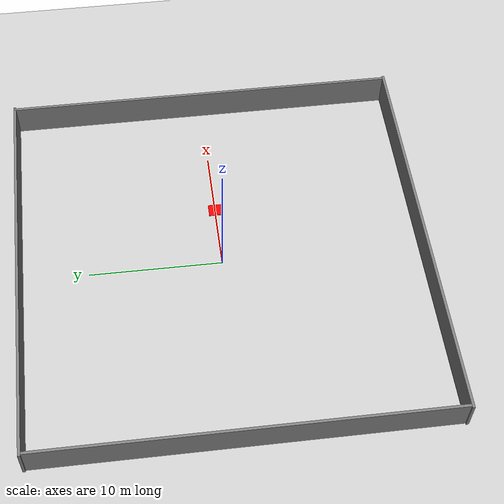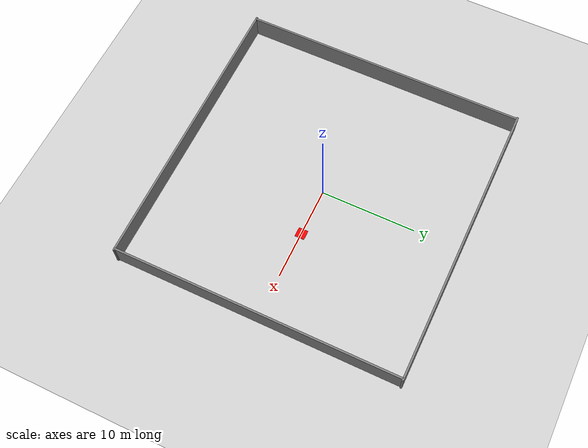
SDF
<sdf version="1.6">
 <world name="default">
  <physics default="1" name="default_physics" type="dart">
   <max_step_size>0.001</max_step_size>
   <real_time_update_rate>1000</real_time_update_rate>
  </physics>
  <scene><ambient>0.3 0.3 0.3 1</ambient><background>0.7 0.8 0.9 1</background><shadows>true</shadows></scene>
  <plugin filename="gz-sim-physics-system" name="gz::sim::systems::Physics"/>
  <plugin filename="gz-sim-user-commands-system" name="gz::sim::systems::UserCommands"/>
  <plugin filename="gz-sim-scene-broadcaster-system" name="gz::sim::systems::SceneBroadcaster"/>
  <plugin filename="gz-sim-sensors-system" name="gz::sim::systems::Sensors">
   <render_engine>ogre2</render_engine>
  </plugin>
  <plugin filename="gz-sim-imu-system" name="gz::sim::systems::Imu"/>
  <gravity>0 0 -9.8</gravity>
  <include><uri>https://fuel.gazebosim.org/1.0/OpenRobotics/models/Ground Plane</uri></include>
  <model name="north_wall">
   <static>true</static>
   <pose>0 15 1.25 0 0 0</pose>
   <link name="link">
    <collision name="collision"><geometry><box><size>30.4 0.2 2.5</size></box></geometry></collision>
    <visual name="visual">
     <geometry><box><size>30.4 0.2 2.5</size></box></geometry>
     <material><ambient>0.5 0.5 0.5 1</ambient><diffuse>0.5 0.5 0.5 1</diffuse></material>
    </visual>
   </link>
  </model>
  <model name="south_wall">
   <static>true</static>
   <pose>0 -15 1.25 0 0 0</pose>
   <link name="link">
    <collision name="collision"><geometry><box><size>30.4 0.2 2.5</size></box></geometry></collision>
    <visual name="visual">
     <geometry><box><size>30.4 0.2 2.5</size></box></geometry>
     <material><ambient>0.5 0.5 0.5 1</ambient><diffuse>0.5 0.5 0.5 1</diffuse></material>
    </visual>
   </link>
  </model>
  <model name="east_wall">
   <static>true</static>
   <pose>15 0 1.25 0 0 0</pose>
   <link name="link">
    <collision name="collision"><geometry><box><size>0.2 30 2.5</size></box></geometry></collision>
    <visual name="visual">
     <geometry><box><size>0.2 30 2.5</size></box></geometry>
     <material><ambient>0.5 0.5 0.5 1</ambient><diffuse>0.5 0.5 0.5 1</diffuse></material>
    </visual>
   </link>
  </model>
  <model name="west_wall">
   <static>true</static>
   <pose>-15 0 1.25 0 0 0</pose>
   <link name="link">
    <collision name="collision"><geometry><box><size>0.2 30 2.5</size></box></geometry></collision>
    <visual name="visual">
     <geometry><box><size>0.2 30 2.5</size></box></geometry>
     <material><ambient>0.5 0.5 0.5 1</ambient><diffuse>0.5 0.5 0.5 1</diffuse></material>
    </visual>
   </link>
  </model>
  <model name="goal_area">
   <static>true</static>
   <pose>5 0 -0.499 0 0 0</pose>
   <link name="link">
    <visual name="visual">
     <geometry><box><size>1 1 1</size></box></geometry>
     <material>
      <ambient>1 0 0 1</ambient>
      <diffuse>1 0 0 1</diffuse>
      <specular>0.1 0.1 0.1 1</specular>
      <emissive>0 0 0 1</emissive>
     </material>
    </visual>
   </link>
  </model>
  <light type="directional" name="sun">
   <pose>0 0 10 0 0 0</pose>
   <diffuse>0.8 0.8 0.8 1</diffuse>
   <specular>0.2 0.2 0.2 1</specular>
   <attenuation>
    <range>1000</range>
    <constant>0.9</constant>
    <linear>0.01</linear>
    <quadratic>0.001</quadratic>
   </attenuation>
   <direction>-0.5 0.1 -0.9</direction>
  </light>
 </world>
</sdf>
